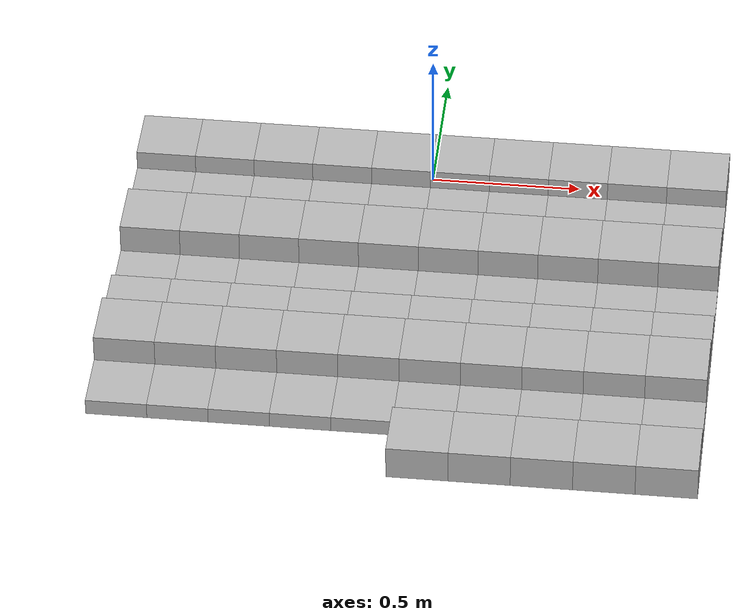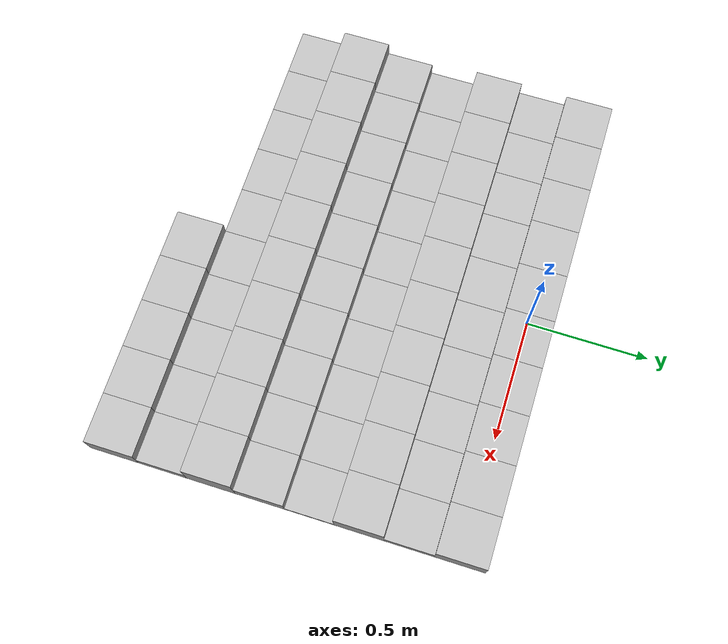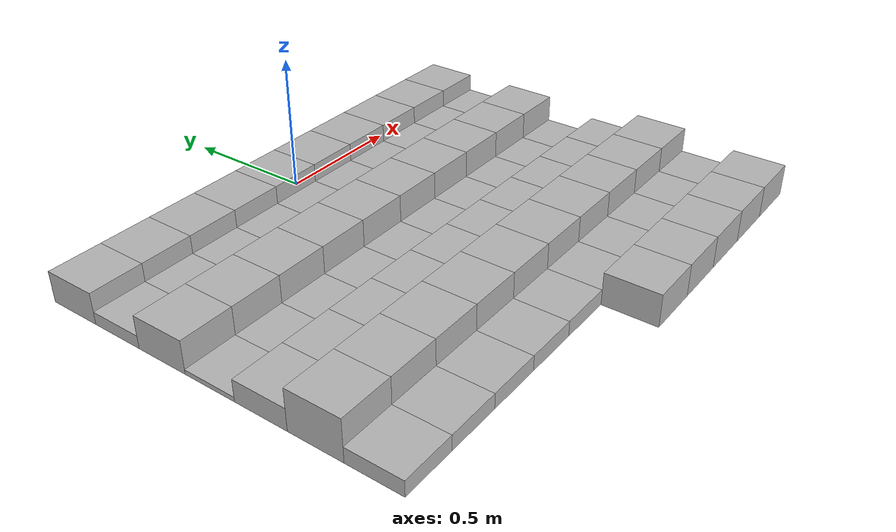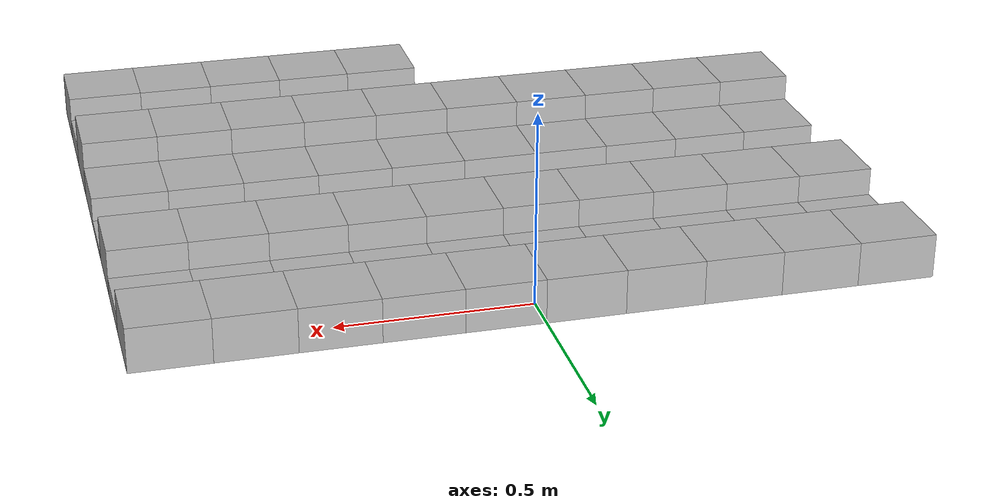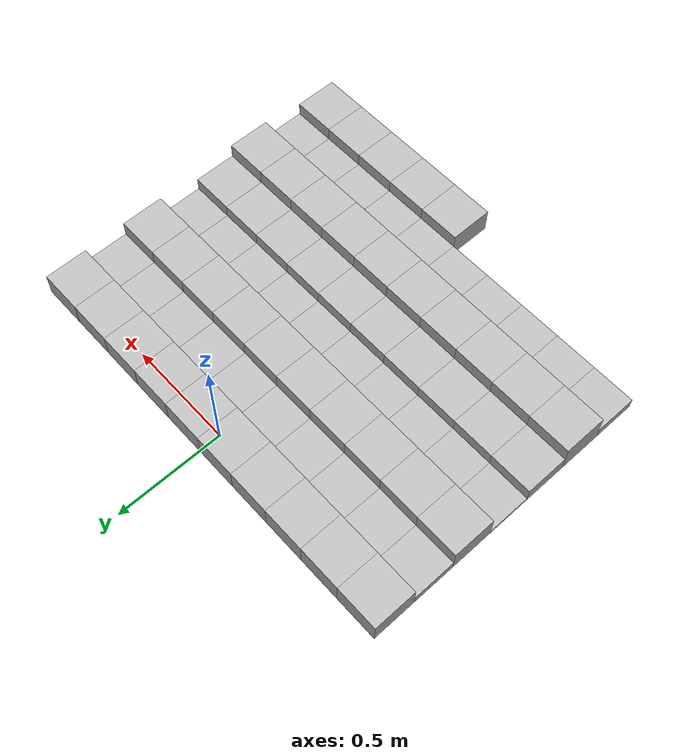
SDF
<sdf version="1.6">
 <model name="Terrain">
  <static>true</static>
  <link name="box_0_0">
   <pose>-0.9 0.0 0.0579484974248 0 0 0</pose>
   <inertial>
    <mass>1.0</mass>
    <inertia><ixx>0.0</ixx><ixy>0.0</ixy><ixz>0.0</ixz><iyy>0.0</iyy><iyz>0.0</iyz><izz>0.0</izz></inertia>
   </inertial>
   <collision name="collision"><geometry><box><size>0.2 0.2 0.11589699485</size></box></geometry></collision>
   <visual name="visual"><geometry><box><size>0.2 0.2 0.11589699485</size></box></geometry></visual>
  </link>
  <link name="box_0_1">
   <pose>-0.7 0.0 0.0579484974248 0 0 0</pose>
   <inertial>
    <mass>1.0</mass>
    <inertia><ixx>0.0</ixx><ixy>0.0</ixy><ixz>0.0</ixz><iyy>0.0</iyy><iyz>0.0</iyz><izz>0.0</izz></inertia>
   </inertial>
   <collision name="collision"><geometry><box><size>0.2 0.2 0.11589699485</size></box></geometry></collision>
   <visual name="visual"><geometry><box><size>0.2 0.2 0.11589699485</size></box></geometry></visual>
  </link>
  <link name="box_0_2">
   <pose>-0.5 0.0 0.0579484974248 0 0 0</pose>
   <inertial>
    <mass>1.0</mass>
    <inertia><ixx>0.0</ixx><ixy>0.0</ixy><ixz>0.0</ixz><iyy>0.0</iyy><iyz>0.0</iyz><izz>0.0</izz></inertia>
   </inertial>
   <collision name="collision"><geometry><box><size>0.2 0.2 0.11589699485</size></box></geometry></collision>
   <visual name="visual"><geometry><box><size>0.2 0.2 0.11589699485</size></box></geometry></visual>
  </link>
  <link name="box_0_3">
   <pose>-0.3 0.0 0.0579484974248 0 0 0</pose>
   <inertial>
    <mass>1.0</mass>
    <inertia><ixx>0.0</ixx><ixy>0.0</ixy><ixz>0.0</ixz><iyy>0.0</iyy><iyz>0.0</iyz><izz>0.0</izz></inertia>
   </inertial>
   <collision name="collision"><geometry><box><size>0.2 0.2 0.11589699485</size></box></geometry></collision>
   <visual name="visual"><geometry><box><size>0.2 0.2 0.11589699485</size></box></geometry></visual>
  </link>
  <link name="box_0_4">
   <pose>-0.1 0.0 0.0579484974248 0 0 0</pose>
   <inertial>
    <mass>1.0</mass>
    <inertia><ixx>0.0</ixx><ixy>0.0</ixy><ixz>0.0</ixz><iyy>0.0</iyy><iyz>0.0</iyz><izz>0.0</izz></inertia>
   </inertial>
   <collision name="collision"><geometry><box><size>0.2 0.2 0.11589699485</size></box></geometry></collision>
   <visual name="visual"><geometry><box><size>0.2 0.2 0.11589699485</size></box></geometry></visual>
  </link>
  <link name="box_0_5">
   <pose>0.1 0.0 0.0579484974248 0 0 0</pose>
   <inertial>
    <mass>1.0</mass>
    <inertia><ixx>0.0</ixx><ixy>0.0</ixy><ixz>0.0</ixz><iyy>0.0</iyy><iyz>0.0</iyz><izz>0.0</izz></inertia>
   </inertial>
   <collision name="collision"><geometry><box><size>0.2 0.2 0.11589699485</size></box></geometry></collision>
   <visual name="visual"><geometry><box><size>0.2 0.2 0.11589699485</size></box></geometry></visual>
  </link>
  <link name="box_0_6">
   <pose>0.3 0.0 0.0579484974248 0 0 0</pose>
   <inertial>
    <mass>1.0</mass>
    <inertia><ixx>0.0</ixx><ixy>0.0</ixy><ixz>0.0</ixz><iyy>0.0</iyy><iyz>0.0</iyz><izz>0.0</izz></inertia>
   </inertial>
   <collision name="collision"><geometry><box><size>0.2 0.2 0.11589699485</size></box></geometry></collision>
   <visual name="visual"><geometry><box><size>0.2 0.2 0.11589699485</size></box></geometry></visual>
  </link>
  <link name="box_0_7">
   <pose>0.5 0.0 0.0579484974248 0 0 0</pose>
   <inertial>
    <mass>1.0</mass>
    <inertia><ixx>0.0</ixx><ixy>0.0</ixy><ixz>0.0</ixz><iyy>0.0</iyy><iyz>0.0</iyz><izz>0.0</izz></inertia>
   </inertial>
   <collision name="collision"><geometry><box><size>0.2 0.2 0.11589699485</size></box></geometry></collision>
   <visual name="visual"><geometry><box><size>0.2 0.2 0.11589699485</size></box></geometry></visual>
  </link>
  <link name="box_0_8">
   <pose>0.7 0.0 0.0579484974248 0 0 0</pose>
   <inertial>
    <mass>1.0</mass>
    <inertia><ixx>0.0</ixx><ixy>0.0</ixy><ixz>0.0</ixz><iyy>0.0</iyy><iyz>0.0</iyz><izz>0.0</izz></inertia>
   </inertial>
   <collision name="collision"><geometry><box><size>0.2 0.2 0.11589699485</size></box></geometry></collision>
   <visual name="visual"><geometry><box><size>0.2 0.2 0.11589699485</size></box></geometry></visual>
  </link>
  <link name="box_0_9">
   <pose>0.9 0.0 0.0579484974248 0 0 0</pose>
   <inertial>
    <mass>1.0</mass>
    <inertia><ixx>0.0</ixx><ixy>0.0</ixy><ixz>0.0</ixz><iyy>0.0</iyy><iyz>0.0</iyz><izz>0.0</izz></inertia>
   </inertial>
   <collision name="collision"><geometry><box><size>0.2 0.2 0.11589699485</size></box></geometry></collision>
   <visual name="visual"><geometry><box><size>0.2 0.2 0.11589699485</size></box></geometry></visual>
  </link>
  <link name="box_1_0">
   <pose>-0.9 -0.2 0.0234872967775 0 0 0</pose>
   <inertial>
    <mass>1.0</mass>
    <inertia><ixx>0.0</ixx><ixy>0.0</ixy><ixz>0.0</ixz><iyy>0.0</iyy><iyz>0.0</iyz><izz>0.0</izz></inertia>
   </inertial>
   <collision name="collision"><geometry><box><size>0.2 0.2 0.046974593555</size></box></geometry></collision>
   <visual name="visual"><geometry><box><size>0.2 0.2 0.046974593555</size></box></geometry></visual>
  </link>
  <link name="box_1_1">
   <pose>-0.7 -0.2 0.0234872967775 0 0 0</pose>
   <inertial>
    <mass>1.0</mass>
    <inertia><ixx>0.0</ixx><ixy>0.0</ixy><ixz>0.0</ixz><iyy>0.0</iyy><iyz>0.0</iyz><izz>0.0</izz></inertia>
   </inertial>
   <collision name="collision"><geometry><box><size>0.2 0.2 0.046974593555</size></box></geometry></collision>
   <visual name="visual"><geometry><box><size>0.2 0.2 0.046974593555</size></box></geometry></visual>
  </link>
  <link name="box_1_2">
   <pose>-0.5 -0.2 0.0234872967775 0 0 0</pose>
   <inertial>
    <mass>1.0</mass>
    <inertia><ixx>0.0</ixx><ixy>0.0</ixy><ixz>0.0</ixz><iyy>0.0</iyy><iyz>0.0</iyz><izz>0.0</izz></inertia>
   </inertial>
   <collision name="collision"><geometry><box><size>0.2 0.2 0.046974593555</size></box></geometry></collision>
   <visual name="visual"><geometry><box><size>0.2 0.2 0.046974593555</size></box></geometry></visual>
  </link>
  <link name="box_1_3">
   <pose>-0.3 -0.2 0.0234872967775 0 0 0</pose>
   <inertial>
    <mass>1.0</mass>
    <inertia><ixx>0.0</ixx><ixy>0.0</ixy><ixz>0.0</ixz><iyy>0.0</iyy><iyz>0.0</iyz><izz>0.0</izz></inertia>
   </inertial>
   <collision name="collision"><geometry><box><size>0.2 0.2 0.046974593555</size></box></geometry></collision>
   <visual name="visual"><geometry><box><size>0.2 0.2 0.046974593555</size></box></geometry></visual>
  </link>
  <link name="box_1_4">
   <pose>-0.1 -0.2 0.0234872967775 0 0 0</pose>
   <inertial>
    <mass>1.0</mass>
    <inertia><ixx>0.0</ixx><ixy>0.0</ixy><ixz>0.0</ixz><iyy>0.0</iyy><iyz>0.0</iyz><izz>0.0</izz></inertia>
   </inertial>
   <collision name="collision"><geometry><box><size>0.2 0.2 0.046974593555</size></box></geometry></collision>
   <visual name="visual"><geometry><box><size>0.2 0.2 0.046974593555</size></box></geometry></visual>
  </link>
  <link name="box_1_5">
   <pose>0.1 -0.2 0.0234872967775 0 0 0</pose>
   <inertial>
    <mass>1.0</mass>
    <inertia><ixx>0.0</ixx><ixy>0.0</ixy><ixz>0.0</ixz><iyy>0.0</iyy><iyz>0.0</iyz><izz>0.0</izz></inertia>
   </inertial>
   <collision name="collision"><geometry><box><size>0.2 0.2 0.046974593555</size></box></geometry></collision>
   <visual name="visual"><geometry><box><size>0.2 0.2 0.046974593555</size></box></geometry></visual>
  </link>
  <link name="box_1_6">
   <pose>0.3 -0.2 0.0234872967775 0 0 0</pose>
   <inertial>
    <mass>1.0</mass>
    <inertia><ixx>0.0</ixx><ixy>0.0</ixy><ixz>0.0</ixz><iyy>0.0</iyy><iyz>0.0</iyz><izz>0.0</izz></inertia>
   </inertial>
   <collision name="collision"><geometry><box><size>0.2 0.2 0.046974593555</size></box></geometry></collision>
   <visual name="visual"><geometry><box><size>0.2 0.2 0.046974593555</size></box></geometry></visual>
  </link>
  <link name="box_1_7">
   <pose>0.5 -0.2 0.0234872967775 0 0 0</pose>
   <inertial>
    <mass>1.0</mass>
    <inertia><ixx>0.0</ixx><ixy>0.0</ixy><ixz>0.0</ixz><iyy>0.0</iyy><iyz>0.0</iyz><izz>0.0</izz></inertia>
   </inertial>
   <collision name="collision"><geometry><box><size>0.2 0.2 0.046974593555</size></box></geometry></collision>
   <visual name="visual"><geometry><box><size>0.2 0.2 0.046974593555</size></box></geometry></visual>
  </link>
  <link name="box_1_8">
   <pose>0.7 -0.2 0.0234872967775 0 0 0</pose>
   <inertial>
    <mass>1.0</mass>
    <inertia><ixx>0.0</ixx><ixy>0.0</ixy><ixz>0.0</ixz><iyy>0.0</iyy><iyz>0.0</iyz><izz>0.0</izz></inertia>
   </inertial>
   <collision name="collision"><geometry><box><size>0.2 0.2 0.046974593555</size></box></geometry></collision>
   <visual name="visual"><geometry><box><size>0.2 0.2 0.046974593555</size></box></geometry></visual>
  </link>
  <link name="box_1_9">
   <pose>0.9 -0.2 0.0234872967775 0 0 0</pose>
   <inertial>
    <mass>1.0</mass>
    <inertia><ixx>0.0</ixx><ixy>0.0</ixy><ixz>0.0</ixz><iyy>0.0</iyy><iyz>0.0</iyz><izz>0.0</izz></inertia>
   </inertial>
   <collision name="collision"><geometry><box><size>0.2 0.2 0.046974593555</size></box></geometry></collision>
   <visual name="visual"><geometry><box><size>0.2 0.2 0.046974593555</size></box></geometry></visual>
  </link>
  <link name="box_2_0">
   <pose>-0.9 -0.4 0.0606681832605 0 0 0</pose>
   <inertial>
    <mass>1.0</mass>
    <inertia><ixx>0.0</ixx><ixy>0.0</ixy><ixz>0.0</ixz><iyy>0.0</iyy><iyz>0.0</iyz><izz>0.0</izz></inertia>
   </inertial>
   <collision name="collision"><geometry><box><size>0.2 0.2 0.121336366521</size></box></geometry></collision>
   <visual name="visual"><geometry><box><size>0.2 0.2 0.121336366521</size></box></geometry></visual>
  </link>
  <link name="box_2_1">
   <pose>-0.7 -0.4 0.0606681832605 0 0 0</pose>
   <inertial>
    <mass>1.0</mass>
    <inertia><ixx>0.0</ixx><ixy>0.0</ixy><ixz>0.0</ixz><iyy>0.0</iyy><iyz>0.0</iyz><izz>0.0</izz></inertia>
   </inertial>
   <collision name="collision"><geometry><box><size>0.2 0.2 0.121336366521</size></box></geometry></collision>
   <visual name="visual"><geometry><box><size>0.2 0.2 0.121336366521</size></box></geometry></visual>
  </link>
  <link name="box_2_2">
   <pose>-0.5 -0.4 0.0606681832605 0 0 0</pose>
   <inertial>
    <mass>1.0</mass>
    <inertia><ixx>0.0</ixx><ixy>0.0</ixy><ixz>0.0</ixz><iyy>0.0</iyy><iyz>0.0</iyz><izz>0.0</izz></inertia>
   </inertial>
   <collision name="collision"><geometry><box><size>0.2 0.2 0.121336366521</size></box></geometry></collision>
   <visual name="visual"><geometry><box><size>0.2 0.2 0.121336366521</size></box></geometry></visual>
  </link>
  <link name="box_2_3">
   <pose>-0.3 -0.4 0.0606681832605 0 0 0</pose>
   <inertial>
    <mass>1.0</mass>
    <inertia><ixx>0.0</ixx><ixy>0.0</ixy><ixz>0.0</ixz><iyy>0.0</iyy><iyz>0.0</iyz><izz>0.0</izz></inertia>
   </inertial>
   <collision name="collision"><geometry><box><size>0.2 0.2 0.121336366521</size></box></geometry></collision>
   <visual name="visual"><geometry><box><size>0.2 0.2 0.121336366521</size></box></geometry></visual>
  </link>
  <link name="box_2_4">
   <pose>-0.1 -0.4 0.0606681832605 0 0 0</pose>
   <inertial>
    <mass>1.0</mass>
    <inertia><ixx>0.0</ixx><ixy>0.0</ixy><ixz>0.0</ixz><iyy>0.0</iyy><iyz>0.0</iyz><izz>0.0</izz></inertia>
   </inertial>
   <collision name="collision"><geometry><box><size>0.2 0.2 0.121336366521</size></box></geometry></collision>
   <visual name="visual"><geometry><box><size>0.2 0.2 0.121336366521</size></box></geometry></visual>
  </link>
  <link name="box_2_5">
   <pose>0.1 -0.4 0.0606681832605 0 0 0</pose>
   <inertial>
    <mass>1.0</mass>
    <inertia><ixx>0.0</ixx><ixy>0.0</ixy><ixz>0.0</ixz><iyy>0.0</iyy><iyz>0.0</iyz><izz>0.0</izz></inertia>
   </inertial>
   <collision name="collision"><geometry><box><size>0.2 0.2 0.121336366521</size></box></geometry></collision>
   <visual name="visual"><geometry><box><size>0.2 0.2 0.121336366521</size></box></geometry></visual>
  </link>
  <link name="box_2_6">
   <pose>0.3 -0.4 0.0606681832605 0 0 0</pose>
   <inertial>
    <mass>1.0</mass>
    <inertia><ixx>0.0</ixx><ixy>0.0</ixy><ixz>0.0</ixz><iyy>0.0</iyy><iyz>0.0</iyz><izz>0.0</izz></inertia>
   </inertial>
   <collision name="collision"><geometry><box><size>0.2 0.2 0.121336366521</size></box></geometry></collision>
   <visual name="visual"><geometry><box><size>0.2 0.2 0.121336366521</size></box></geometry></visual>
  </link>
  <link name="box_2_7">
   <pose>0.5 -0.4 0.0606681832605 0 0 0</pose>
   <inertial>
    <mass>1.0</mass>
    <inertia><ixx>0.0</ixx><ixy>0.0</ixy><ixz>0.0</ixz><iyy>0.0</iyy><iyz>0.0</iyz><izz>0.0</izz></inertia>
   </inertial>
   <collision name="collision"><geometry><box><size>0.2 0.2 0.121336366521</size></box></geometry></collision>
   <visual name="visual"><geometry><box><size>0.2 0.2 0.121336366521</size></box></geometry></visual>
  </link>
  <link name="box_2_8">
   <pose>0.7 -0.4 0.0606681832605 0 0 0</pose>
   <inertial>
    <mass>1.0</mass>
    <inertia><ixx>0.0</ixx><ixy>0.0</ixy><ixz>0.0</ixz><iyy>0.0</iyy><iyz>0.0</iyz><izz>0.0</izz></inertia>
   </inertial>
   <collision name="collision"><geometry><box><size>0.2 0.2 0.121336366521</size></box></geometry></collision>
   <visual name="visual"><geometry><box><size>0.2 0.2 0.121336366521</size></box></geometry></visual>
  </link>
  <link name="box_2_9">
   <pose>0.9 -0.4 0.0606681832605 0 0 0</pose>
   <inertial>
    <mass>1.0</mass>
    <inertia><ixx>0.0</ixx><ixy>0.0</ixy><ixz>0.0</ixz><iyy>0.0</iyy><iyz>0.0</iyz><izz>0.0</izz></inertia>
   </inertial>
   <collision name="collision"><geometry><box><size>0.2 0.2 0.121336366521</size></box></geometry></collision>
   <visual name="visual"><geometry><box><size>0.2 0.2 0.121336366521</size></box></geometry></visual>
  </link>
  <link name="box_3_0">
   <pose>-0.9 -0.6 0.00862363817323 0 0 0</pose>
   <inertial>
    <mass>1.0</mass>
    <inertia><ixx>0.0</ixx><ixy>0.0</ixy><ixz>0.0</ixz><iyy>0.0</iyy><iyz>0.0</iyz><izz>0.0</izz></inertia>
   </inertial>
   <collision name="collision"><geometry><box><size>0.2 0.2 0.0172472763465</size></box></geometry></collision>
   <visual name="visual"><geometry><box><size>0.2 0.2 0.0172472763465</size></box></geometry></visual>
  </link>
  <link name="box_3_1">
   <pose>-0.7 -0.6 0.00862363817323 0 0 0</pose>
   <inertial>
    <mass>1.0</mass>
    <inertia><ixx>0.0</ixx><ixy>0.0</ixy><ixz>0.0</ixz><iyy>0.0</iyy><iyz>0.0</iyz><izz>0.0</izz></inertia>
   </inertial>
   <collision name="collision"><geometry><box><size>0.2 0.2 0.0172472763465</size></box></geometry></collision>
   <visual name="visual"><geometry><box><size>0.2 0.2 0.0172472763465</size></box></geometry></visual>
  </link>
  <link name="box_3_2">
   <pose>-0.5 -0.6 0.00862363817323 0 0 0</pose>
   <inertial>
    <mass>1.0</mass>
    <inertia><ixx>0.0</ixx><ixy>0.0</ixy><ixz>0.0</ixz><iyy>0.0</iyy><iyz>0.0</iyz><izz>0.0</izz></inertia>
   </inertial>
   <collision name="collision"><geometry><box><size>0.2 0.2 0.0172472763465</size></box></geometry></collision>
   <visual name="visual"><geometry><box><size>0.2 0.2 0.0172472763465</size></box></geometry></visual>
  </link>
  <link name="box_3_3">
   <pose>-0.3 -0.6 0.00862363817323 0 0 0</pose>
   <inertial>
    <mass>1.0</mass>
    <inertia><ixx>0.0</ixx><ixy>0.0</ixy><ixz>0.0</ixz><iyy>0.0</iyy><iyz>0.0</iyz><izz>0.0</izz></inertia>
   </inertial>
   <collision name="collision"><geometry><box><size>0.2 0.2 0.0172472763465</size></box></geometry></collision>
   <visual name="visual"><geometry><box><size>0.2 0.2 0.0172472763465</size></box></geometry></visual>
  </link>
  <link name="box_3_4">
   <pose>-0.1 -0.6 0.00862363817323 0 0 0</pose>
   <inertial>
    <mass>1.0</mass>
    <inertia><ixx>0.0</ixx><ixy>0.0</ixy><ixz>0.0</ixz><iyy>0.0</iyy><iyz>0.0</iyz><izz>0.0</izz></inertia>
   </inertial>
   <collision name="collision"><geometry><box><size>0.2 0.2 0.0172472763465</size></box></geometry></collision>
   <visual name="visual"><geometry><box><size>0.2 0.2 0.0172472763465</size></box></geometry></visual>
  </link>
  <link name="box_3_5">
   <pose>0.1 -0.6 0.00862363817323 0 0 0</pose>
   <inertial>
    <mass>1.0</mass>
    <inertia><ixx>0.0</ixx><ixy>0.0</ixy><ixz>0.0</ixz><iyy>0.0</iyy><iyz>0.0</iyz><izz>0.0</izz></inertia>
   </inertial>
   <collision name="collision"><geometry><box><size>0.2 0.2 0.0172472763465</size></box></geometry></collision>
   <visual name="visual"><geometry><box><size>0.2 0.2 0.0172472763465</size></box></geometry></visual>
  </link>
  <link name="box_3_6">
   <pose>0.3 -0.6 0.00862363817323 0 0 0</pose>
   <inertial>
    <mass>1.0</mass>
    <inertia><ixx>0.0</ixx><ixy>0.0</ixy><ixz>0.0</ixz><iyy>0.0</iyy><iyz>0.0</iyz><izz>0.0</izz></inertia>
   </inertial>
   <collision name="collision"><geometry><box><size>0.2 0.2 0.0172472763465</size></box></geometry></collision>
   <visual name="visual"><geometry><box><size>0.2 0.2 0.0172472763465</size></box></geometry></visual>
  </link>
  <link name="box_3_7">
   <pose>0.5 -0.6 0.00862363817323 0 0 0</pose>
   <inertial>
    <mass>1.0</mass>
    <inertia><ixx>0.0</ixx><ixy>0.0</ixy><ixz>0.0</ixz><iyy>0.0</iyy><iyz>0.0</iyz><izz>0.0</izz></inertia>
   </inertial>
   <collision name="collision"><geometry><box><size>0.2 0.2 0.0172472763465</size></box></geometry></collision>
   <visual name="visual"><geometry><box><size>0.2 0.2 0.0172472763465</size></box></geometry></visual>
  </link>
  <link name="box_3_8">
   <pose>0.7 -0.6 0.00862363817323 0 0 0</pose>
   <inertial>
    <mass>1.0</mass>
    <inertia><ixx>0.0</ixx><ixy>0.0</ixy><ixz>0.0</ixz><iyy>0.0</iyy><iyz>0.0</iyz><izz>0.0</izz></inertia>
   </inertial>
   <collision name="collision"><geometry><box><size>0.2 0.2 0.0172472763465</size></box></geometry></collision>
   <visual name="visual"><geometry><box><size>0.2 0.2 0.0172472763465</size></box></geometry></visual>
  </link>
  <link name="box_3_9">
   <pose>0.9 -0.6 0.00862363817323 0 0 0</pose>
   <inertial>
    <mass>1.0</mass>
    <inertia><ixx>0.0</ixx><ixy>0.0</ixy><ixz>0.0</ixz><iyy>0.0</iyy><iyz>0.0</iyz><izz>0.0</izz></inertia>
   </inertial>
   <collision name="collision"><geometry><box><size>0.2 0.2 0.0172472763465</size></box></geometry></collision>
   <visual name="visual"><geometry><box><size>0.2 0.2 0.0172472763465</size></box></geometry></visual>
  </link>
  <link name="box_4_0">
   <pose>-0.9 -0.8 0.0405508995233 0 0 0</pose>
   <inertial>
    <mass>1.0</mass>
    <inertia><ixx>0.0</ixx><ixy>0.0</ixy><ixz>0.0</ixz><iyy>0.0</iyy><iyz>0.0</iyz><izz>0.0</izz></inertia>
   </inertial>
   <collision name="collision"><geometry><box><size>0.2 0.2 0.0811017990466</size></box></geometry></collision>
   <visual name="visual"><geometry><box><size>0.2 0.2 0.0811017990466</size></box></geometry></visual>
  </link>
  <link name="box_4_1">
   <pose>-0.7 -0.8 0.0405508995233 0 0 0</pose>
   <inertial>
    <mass>1.0</mass>
    <inertia><ixx>0.0</ixx><ixy>0.0</ixy><ixz>0.0</ixz><iyy>0.0</iyy><iyz>0.0</iyz><izz>0.0</izz></inertia>
   </inertial>
   <collision name="collision"><geometry><box><size>0.2 0.2 0.0811017990466</size></box></geometry></collision>
   <visual name="visual"><geometry><box><size>0.2 0.2 0.0811017990466</size></box></geometry></visual>
  </link>
  <link name="box_4_2">
   <pose>-0.5 -0.8 0.0405508995233 0 0 0</pose>
   <inertial>
    <mass>1.0</mass>
    <inertia><ixx>0.0</ixx><ixy>0.0</ixy><ixz>0.0</ixz><iyy>0.0</iyy><iyz>0.0</iyz><izz>0.0</izz></inertia>
   </inertial>
   <collision name="collision"><geometry><box><size>0.2 0.2 0.0811017990466</size></box></geometry></collision>
   <visual name="visual"><geometry><box><size>0.2 0.2 0.0811017990466</size></box></geometry></visual>
  </link>
  <link name="box_4_3">
   <pose>-0.3 -0.8 0.0405508995233 0 0 0</pose>
   <inertial>
    <mass>1.0</mass>
    <inertia><ixx>0.0</ixx><ixy>0.0</ixy><ixz>0.0</ixz><iyy>0.0</iyy><iyz>0.0</iyz><izz>0.0</izz></inertia>
   </inertial>
   <collision name="collision"><geometry><box><size>0.2 0.2 0.0811017990466</size></box></geometry></collision>
   <visual name="visual"><geometry><box><size>0.2 0.2 0.0811017990466</size></box></geometry></visual>
  </link>
  <link name="box_4_4">
   <pose>-0.1 -0.8 0.0405508995233 0 0 0</pose>
   <inertial>
    <mass>1.0</mass>
    <inertia><ixx>0.0</ixx><ixy>0.0</ixy><ixz>0.0</ixz><iyy>0.0</iyy><iyz>0.0</iyz><izz>0.0</izz></inertia>
   </inertial>
   <collision name="collision"><geometry><box><size>0.2 0.2 0.0811017990466</size></box></geometry></collision>
   <visual name="visual"><geometry><box><size>0.2 0.2 0.0811017990466</size></box></geometry></visual>
  </link>
  <link name="box_4_5">
   <pose>0.1 -0.8 0.0405508995233 0 0 0</pose>
   <inertial>
    <mass>1.0</mass>
    <inertia><ixx>0.0</ixx><ixy>0.0</ixy><ixz>0.0</ixz><iyy>0.0</iyy><iyz>0.0</iyz><izz>0.0</izz></inertia>
   </inertial>
   <collision name="collision"><geometry><box><size>0.2 0.2 0.0811017990466</size></box></geometry></collision>
   <visual name="visual"><geometry><box><size>0.2 0.2 0.0811017990466</size></box></geometry></visual>
  </link>
  <link name="box_4_6">
   <pose>0.3 -0.8 0.0405508995233 0 0 0</pose>
   <inertial>
    <mass>1.0</mass>
    <inertia><ixx>0.0</ixx><ixy>0.0</ixy><ixz>0.0</ixz><iyy>0.0</iyy><iyz>0.0</iyz><izz>0.0</izz></inertia>
   </inertial>
   <collision name="collision"><geometry><box><size>0.2 0.2 0.0811017990466</size></box></geometry></collision>
   <visual name="visual"><geometry><box><size>0.2 0.2 0.0811017990466</size></box></geometry></visual>
  </link>
  <link name="box_4_7">
   <pose>0.5 -0.8 0.0405508995233 0 0 0</pose>
   <inertial>
    <mass>1.0</mass>
    <inertia><ixx>0.0</ixx><ixy>0.0</ixy><ixz>0.0</ixz><iyy>0.0</iyy><iyz>0.0</iyz><izz>0.0</izz></inertia>
   </inertial>
   <collision name="collision"><geometry><box><size>0.2 0.2 0.0811017990466</size></box></geometry></collision>
   <visual name="visual"><geometry><box><size>0.2 0.2 0.0811017990466</size></box></geometry></visual>
  </link>
  <link name="box_4_8">
   <pose>0.7 -0.8 0.0405508995233 0 0 0</pose>
   <inertial>
    <mass>1.0</mass>
    <inertia><ixx>0.0</ixx><ixy>0.0</ixy><ixz>0.0</ixz><iyy>0.0</iyy><iyz>0.0</iyz><izz>0.0</izz></inertia>
   </inertial>
   <collision name="collision"><geometry><box><size>0.2 0.2 0.0811017990466</size></box></geometry></collision>
   <visual name="visual"><geometry><box><size>0.2 0.2 0.0811017990466</size></box></geometry></visual>
  </link>
  <link name="box_4_9">
   <pose>0.9 -0.8 0.0405508995233 0 0 0</pose>
   <inertial>
    <mass>1.0</mass>
    <inertia><ixx>0.0</ixx><ixy>0.0</ixy><ixz>0.0</ixz><iyy>0.0</iyy><iyz>0.0</iyz><izz>0.0</izz></inertia>
   </inertial>
   <collision name="collision"><geometry><box><size>0.2 0.2 0.0811017990466</size></box></geometry></collision>
   <visual name="visual"><geometry><box><size>0.2 0.2 0.0811017990466</size></box></geometry></visual>
  </link>
  <link name="box_5_0">
   <pose>-0.9 -1.0 0.0760653681795 0 0 0</pose>
   <inertial>
    <mass>1.0</mass>
    <inertia><ixx>0.0</ixx><ixy>0.0</ixy><ixz>0.0</ixz><iyy>0.0</iyy><iyz>0.0</iyz><izz>0.0</izz></inertia>
   </inertial>
   <collision name="collision"><geometry><box><size>0.2 0.2 0.152130736359</size></box></geometry></collision>
   <visual name="visual"><geometry><box><size>0.2 0.2 0.152130736359</size></box></geometry></visual>
  </link>
  <link name="box_5_1">
   <pose>-0.7 -1.0 0.0760653681795 0 0 0</pose>
   <inertial>
    <mass>1.0</mass>
    <inertia><ixx>0.0</ixx><ixy>0.0</ixy><ixz>0.0</ixz><iyy>0.0</iyy><iyz>0.0</iyz><izz>0.0</izz></inertia>
   </inertial>
   <collision name="collision"><geometry><box><size>0.2 0.2 0.152130736359</size></box></geometry></collision>
   <visual name="visual"><geometry><box><size>0.2 0.2 0.152130736359</size></box></geometry></visual>
  </link>
  <link name="box_5_2">
   <pose>-0.5 -1.0 0.0760653681795 0 0 0</pose>
   <inertial>
    <mass>1.0</mass>
    <inertia><ixx>0.0</ixx><ixy>0.0</ixy><ixz>0.0</ixz><iyy>0.0</iyy><iyz>0.0</iyz><izz>0.0</izz></inertia>
   </inertial>
   <collision name="collision"><geometry><box><size>0.2 0.2 0.152130736359</size></box></geometry></collision>
   <visual name="visual"><geometry><box><size>0.2 0.2 0.152130736359</size></box></geometry></visual>
  </link>
  <link name="box_5_3">
   <pose>-0.3 -1.0 0.0760653681795 0 0 0</pose>
   <inertial>
    <mass>1.0</mass>
    <inertia><ixx>0.0</ixx><ixy>0.0</ixy><ixz>0.0</ixz><iyy>0.0</iyy><iyz>0.0</iyz><izz>0.0</izz></inertia>
   </inertial>
   <collision name="collision"><geometry><box><size>0.2 0.2 0.152130736359</size></box></geometry></collision>
   <visual name="visual"><geometry><box><size>0.2 0.2 0.152130736359</size></box></geometry></visual>
  </link>
  <link name="box_5_4">
   <pose>-0.1 -1.0 0.0760653681795 0 0 0</pose>
   <inertial>
    <mass>1.0</mass>
    <inertia><ixx>0.0</ixx><ixy>0.0</ixy><ixz>0.0</ixz><iyy>0.0</iyy><iyz>0.0</iyz><izz>0.0</izz></inertia>
   </inertial>
   <collision name="collision"><geometry><box><size>0.2 0.2 0.152130736359</size></box></geometry></collision>
   <visual name="visual"><geometry><box><size>0.2 0.2 0.152130736359</size></box></geometry></visual>
  </link>
  <link name="box_5_5">
   <pose>0.1 -1.0 0.0760653681795 0 0 0</pose>
   <inertial>
    <mass>1.0</mass>
    <inertia><ixx>0.0</ixx><ixy>0.0</ixy><ixz>0.0</ixz><iyy>0.0</iyy><iyz>0.0</iyz><izz>0.0</izz></inertia>
   </inertial>
   <collision name="collision"><geometry><box><size>0.2 0.2 0.152130736359</size></box></geometry></collision>
   <visual name="visual"><geometry><box><size>0.2 0.2 0.152130736359</size></box></geometry></visual>
  </link>
  <link name="box_5_6">
   <pose>0.3 -1.0 0.0760653681795 0 0 0</pose>
   <inertial>
    <mass>1.0</mass>
    <inertia><ixx>0.0</ixx><ixy>0.0</ixy><ixz>0.0</ixz><iyy>0.0</iyy><iyz>0.0</iyz><izz>0.0</izz></inertia>
   </inertial>
   <collision name="collision"><geometry><box><size>0.2 0.2 0.152130736359</size></box></geometry></collision>
   <visual name="visual"><geometry><box><size>0.2 0.2 0.152130736359</size></box></geometry></visual>
  </link>
  <link name="box_5_7">
   <pose>0.5 -1.0 0.0760653681795 0 0 0</pose>
   <inertial>
    <mass>1.0</mass>
    <inertia><ixx>0.0</ixx><ixy>0.0</ixy><ixz>0.0</ixz><iyy>0.0</iyy><iyz>0.0</iyz><izz>0.0</izz></inertia>
   </inertial>
   <collision name="collision"><geometry><box><size>0.2 0.2 0.152130736359</size></box></geometry></collision>
   <visual name="visual"><geometry><box><size>0.2 0.2 0.152130736359</size></box></geometry></visual>
  </link>
  <link name="box_5_8">
   <pose>0.7 -1.0 0.0760653681795 0 0 0</pose>
   <inertial>
    <mass>1.0</mass>
    <inertia><ixx>0.0</ixx><ixy>0.0</ixy><ixz>0.0</ixz><iyy>0.0</iyy><iyz>0.0</iyz><izz>0.0</izz></inertia>
   </inertial>
   <collision name="collision"><geometry><box><size>0.2 0.2 0.152130736359</size></box></geometry></collision>
   <visual name="visual"><geometry><box><size>0.2 0.2 0.152130736359</size></box></geometry></visual>
  </link>
  <link name="box_5_9">
   <pose>0.9 -1.0 0.0760653681795 0 0 0</pose>
   <inertial>
    <mass>1.0</mass>
    <inertia><ixx>0.0</ixx><ixy>0.0</ixy><ixz>0.0</ixz><iyy>0.0</iyy><iyz>0.0</iyz><izz>0.0</izz></inertia>
   </inertial>
   <collision name="collision"><geometry><box><size>0.2 0.2 0.152130736359</size></box></geometry></collision>
   <visual name="visual"><geometry><box><size>0.2 0.2 0.152130736359</size></box></geometry></visual>
  </link>
  <link name="box_6_0">
   <pose>-0.9 -1.2 0.0281652912306 0 0 0</pose>
   <inertial>
    <mass>1.0</mass>
    <inertia><ixx>0.0</ixx><ixy>0.0</ixy><ixz>0.0</ixz><iyy>0.0</iyy><iyz>0.0</iyz><izz>0.0</izz></inertia>
   </inertial>
   <collision name="collision"><geometry><box><size>0.2 0.2 0.0563305824613</size></box></geometry></collision>
   <visual name="visual"><geometry><box><size>0.2 0.2 0.0563305824613</size></box></geometry></visual>
  </link>
  <link name="box_6_1">
   <pose>-0.7 -1.2 0.0281652912306 0 0 0</pose>
   <inertial>
    <mass>1.0</mass>
    <inertia><ixx>0.0</ixx><ixy>0.0</ixy><ixz>0.0</ixz><iyy>0.0</iyy><iyz>0.0</iyz><izz>0.0</izz></inertia>
   </inertial>
   <collision name="collision"><geometry><box><size>0.2 0.2 0.0563305824613</size></box></geometry></collision>
   <visual name="visual"><geometry><box><size>0.2 0.2 0.0563305824613</size></box></geometry></visual>
  </link>
  <link name="box_6_2">
   <pose>-0.5 -1.2 0.0281652912306 0 0 0</pose>
   <inertial>
    <mass>1.0</mass>
    <inertia><ixx>0.0</ixx><ixy>0.0</ixy><ixz>0.0</ixz><iyy>0.0</iyy><iyz>0.0</iyz><izz>0.0</izz></inertia>
   </inertial>
   <collision name="collision"><geometry><box><size>0.2 0.2 0.0563305824613</size></box></geometry></collision>
   <visual name="visual"><geometry><box><size>0.2 0.2 0.0563305824613</size></box></geometry></visual>
  </link>
  <link name="box_6_3">
   <pose>-0.3 -1.2 0.0281652912306 0 0 0</pose>
   <inertial>
    <mass>1.0</mass>
    <inertia><ixx>0.0</ixx><ixy>0.0</ixy><ixz>0.0</ixz><iyy>0.0</iyy><iyz>0.0</iyz><izz>0.0</izz></inertia>
   </inertial>
   <collision name="collision"><geometry><box><size>0.2 0.2 0.0563305824613</size></box></geometry></collision>
   <visual name="visual"><geometry><box><size>0.2 0.2 0.0563305824613</size></box></geometry></visual>
  </link>
  <link name="box_6_4">
   <pose>-0.1 -1.2 0.0281652912306 0 0 0</pose>
   <inertial>
    <mass>1.0</mass>
    <inertia><ixx>0.0</ixx><ixy>0.0</ixy><ixz>0.0</ixz><iyy>0.0</iyy><iyz>0.0</iyz><izz>0.0</izz></inertia>
   </inertial>
   <collision name="collision"><geometry><box><size>0.2 0.2 0.0563305824613</size></box></geometry></collision>
   <visual name="visual"><geometry><box><size>0.2 0.2 0.0563305824613</size></box></geometry></visual>
  </link>
  <link name="box_6_5">
   <pose>0.1 -1.2 0.0281652912306 0 0 0</pose>
   <inertial>
    <mass>1.0</mass>
    <inertia><ixx>0.0</ixx><ixy>0.0</ixy><ixz>0.0</ixz><iyy>0.0</iyy><iyz>0.0</iyz><izz>0.0</izz></inertia>
   </inertial>
   <collision name="collision"><geometry><box><size>0.2 0.2 0.0563305824613</size></box></geometry></collision>
   <visual name="visual"><geometry><box><size>0.2 0.2 0.0563305824613</size></box></geometry></visual>
  </link>
  <link name="box_6_6">
   <pose>0.3 -1.2 0.0281652912306 0 0 0</pose>
   <inertial>
    <mass>1.0</mass>
    <inertia><ixx>0.0</ixx><ixy>0.0</ixy><ixz>0.0</ixz><iyy>0.0</iyy><iyz>0.0</iyz><izz>0.0</izz></inertia>
   </inertial>
   <collision name="collision"><geometry><box><size>0.2 0.2 0.0563305824613</size></box></geometry></collision>
   <visual name="visual"><geometry><box><size>0.2 0.2 0.0563305824613</size></box></geometry></visual>
  </link>
  <link name="box_6_7">
   <pose>0.5 -1.2 0.0281652912306 0 0 0</pose>
   <inertial>
    <mass>1.0</mass>
    <inertia><ixx>0.0</ixx><ixy>0.0</ixy><ixz>0.0</ixz><iyy>0.0</iyy><iyz>0.0</iyz><izz>0.0</izz></inertia>
   </inertial>
   <collision name="collision"><geometry><box><size>0.2 0.2 0.0563305824613</size></box></geometry></collision>
   <visual name="visual"><geometry><box><size>0.2 0.2 0.0563305824613</size></box></geometry></visual>
  </link>
  <link name="box_6_8">
   <pose>0.7 -1.2 0.0281652912306 0 0 0</pose>
   <inertial>
    <mass>1.0</mass>
    <inertia><ixx>0.0</ixx><ixy>0.0</ixy><ixz>0.0</ixz><iyy>0.0</iyy><iyz>0.0</iyz><izz>0.0</izz></inertia>
   </inertial>
   <collision name="collision"><geometry><box><size>0.2 0.2 0.0563305824613</size></box></geometry></collision>
   <visual name="visual"><geometry><box><size>0.2 0.2 0.0563305824613</size></box></geometry></visual>
  </link>
  <link name="box_6_9">
   <pose>0.9 -1.2 0.0281652912306 0 0 0</pose>
   <inertial>
    <mass>1.0</mass>
    <inertia><ixx>0.0</ixx><ixy>0.0</ixy><ixz>0.0</ixz><iyy>0.0</iyy><iyz>0.0</iyz><izz>0.0</izz></inertia>
   </inertial>
   <collision name="collision"><geometry><box><size>0.2 0.2 0.0563305824613</size></box></geometry></collision>
   <visual name="visual"><geometry><box><size>0.2 0.2 0.0563305824613</size></box></geometry></visual>
  </link>
  <link name="box_7_5">
   <pose>0.1 -1.4 0.0604212234558 0 0 0</pose>
   <inertial>
    <mass>1.0</mass>
    <inertia><ixx>0.0</ixx><ixy>0.0</ixy><ixz>0.0</ixz><iyy>0.0</iyy><iyz>0.0</iyz><izz>0.0</izz></inertia>
   </inertial>
   <collision name="collision"><geometry><box><size>0.2 0.2 0.120842446912</size></box></geometry></collision>
   <visual name="visual"><geometry><box><size>0.2 0.2 0.120842446912</size></box></geometry></visual>
  </link>
  <link name="box_7_6">
   <pose>0.3 -1.4 0.0604212234558 0 0 0</pose>
   <inertial>
    <mass>1.0</mass>
    <inertia><ixx>0.0</ixx><ixy>0.0</ixy><ixz>0.0</ixz><iyy>0.0</iyy><iyz>0.0</iyz><izz>0.0</izz></inertia>
   </inertial>
   <collision name="collision"><geometry><box><size>0.2 0.2 0.120842446912</size></box></geometry></collision>
   <visual name="visual"><geometry><box><size>0.2 0.2 0.120842446912</size></box></geometry></visual>
  </link>
  <link name="box_7_7">
   <pose>0.5 -1.4 0.0604212234558 0 0 0</pose>
   <inertial>
    <mass>1.0</mass>
    <inertia><ixx>0.0</ixx><ixy>0.0</ixy><ixz>0.0</ixz><iyy>0.0</iyy><iyz>0.0</iyz><izz>0.0</izz></inertia>
   </inertial>
   <collision name="collision"><geometry><box><size>0.2 0.2 0.120842446912</size></box></geometry></collision>
   <visual name="visual"><geometry><box><size>0.2 0.2 0.120842446912</size></box></geometry></visual>
  </link>
  <link name="box_7_8">
   <pose>0.7 -1.4 0.0604212234558 0 0 0</pose>
   <inertial>
    <mass>1.0</mass>
    <inertia><ixx>0.0</ixx><ixy>0.0</ixy><ixz>0.0</ixz><iyy>0.0</iyy><iyz>0.0</iyz><izz>0.0</izz></inertia>
   </inertial>
   <collision name="collision"><geometry><box><size>0.2 0.2 0.120842446912</size></box></geometry></collision>
   <visual name="visual"><geometry><box><size>0.2 0.2 0.120842446912</size></box></geometry></visual>
  </link>
  <link name="box_7_9">
   <pose>0.9 -1.4 0.0604212234558 0 0 0</pose>
   <inertial>
    <mass>1.0</mass>
    <inertia><ixx>0.0</ixx><ixy>0.0</ixy><ixz>0.0</ixz><iyy>0.0</iyy><iyz>0.0</iyz><izz>0.0</izz></inertia>
   </inertial>
   <collision name="collision"><geometry><box><size>0.2 0.2 0.120842446912</size></box></geometry></collision>
   <visual name="visual"><geometry><box><size>0.2 0.2 0.120842446912</size></box></geometry></visual>
  </link>
 </model>
</sdf>
